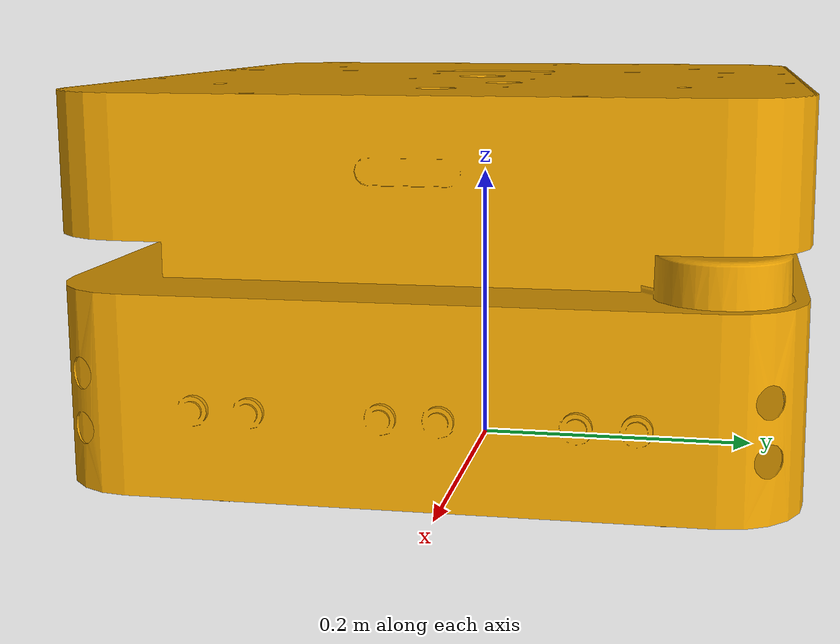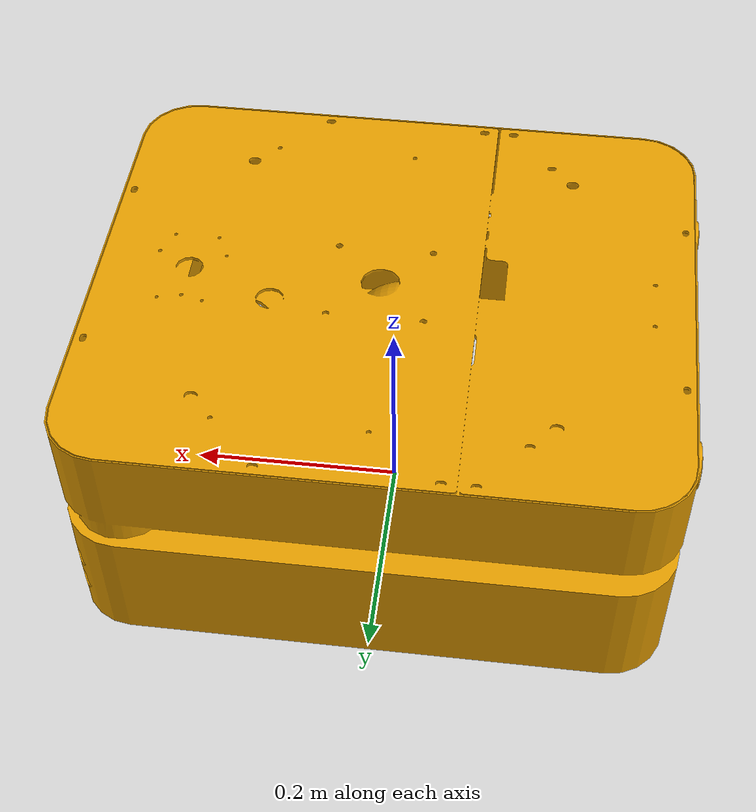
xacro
<?xml version="1.0"?>
<robot xmlns:xacro="http://www.ros.org/wiki/xacro" name="s300">
  <xacro:include filename="$(find lebai_resources)/urdf/common_colours.xacro"/>
  <xacro:include filename="$(find lebai_resources)/urdf/common_constants.xacro"/>
  <xacro:include filename="$(find lebai_resources)/urdf/common_materials.xacro"/>

<xacro:property name="visual_car_base" value="package://lebai_lm3_support/meshes/lm3/visual/s300_mini_car_base_link.stl" />
<xacro:property name="collision_car_base" value="package://lebai_lm3_support/meshes/lm3/collision/s300_mini_car_base_link.stl" />

<link name="base_link">
<visual>
	<geometry>
		<mesh filename="${visual_car_base}"/>
	</geometry>
	<xacro:material_white name="white"/>
</visual>
<collision>
	<geometry>
		<mesh filename="${collision_car_base}" />
	</geometry>
</collision>
</link>

</robot>
